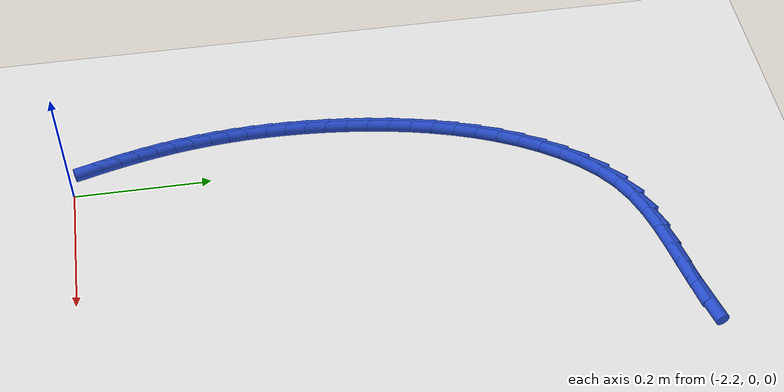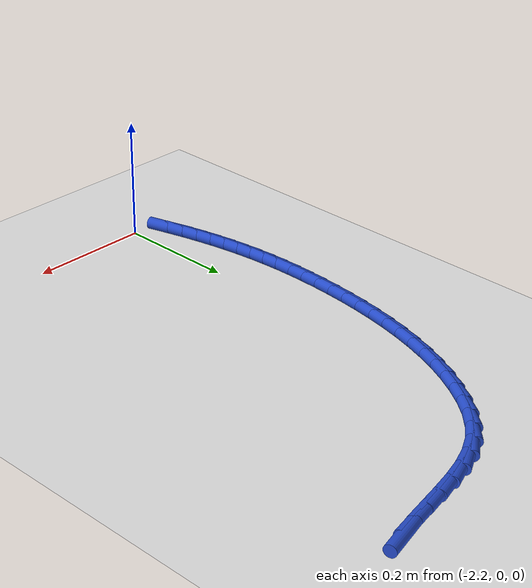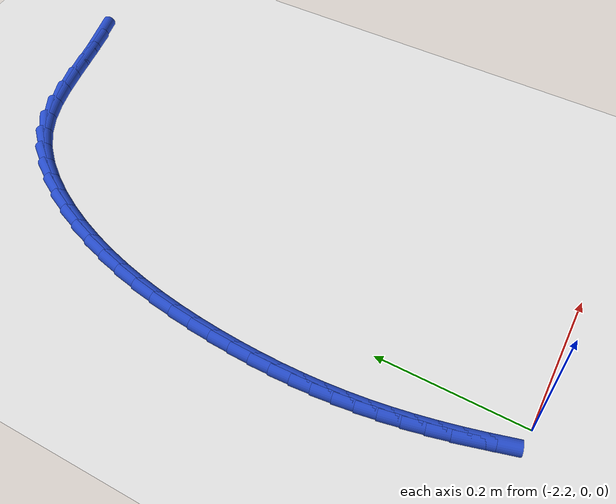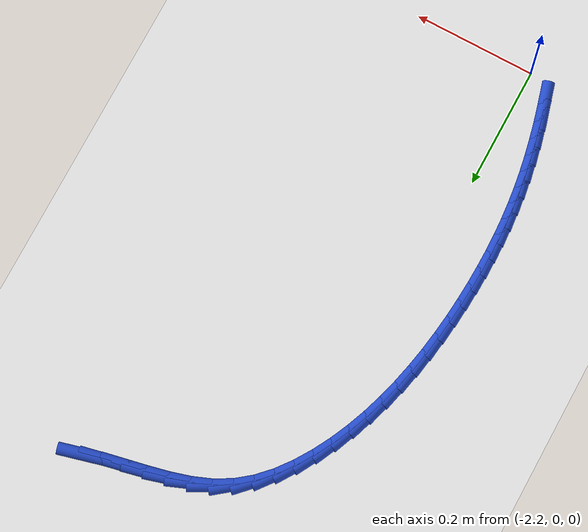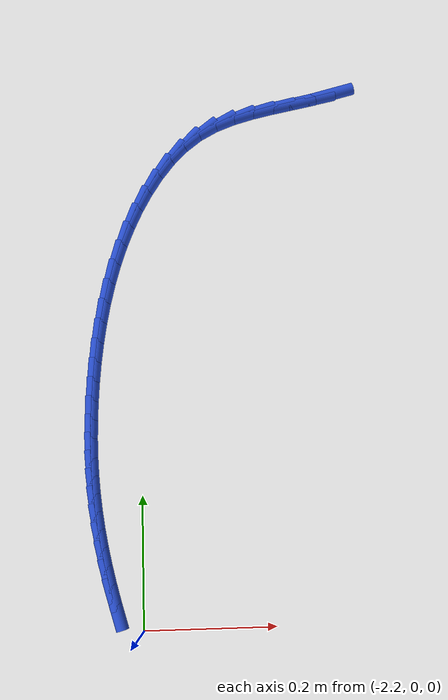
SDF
<sdf version="1.6">
 <world name="default">
  <model name="ground_plane">
   <static>1</static>
   <link name="link">
    <collision name="collision">
     <geometry><plane><normal>0 0 1</normal><size>100 100</size></plane></geometry>
     <surface><friction><ode><mu>100</mu><mu2>50</mu2></ode></friction></surface>
    </collision>
    <visual name="visual">
     <cast_shadows>0</cast_shadows>
     <geometry><plane><normal>0 0 1</normal><size>100 100</size></plane></geometry>
     <material>
      <script><uri>file://media/materials/scripts/gazebo.material</uri><name>Gazebo/WhiteGlow</name></script>
     </material>
    </visual>
   </link>
  </model>
  <model name="line">
   <link name="link_102">
    <pose>-1.8765766927615994 0.8569418117144133 0.01 0 1.57 0.2546459251918562</pose>
    <collision name="collision">
     <geometry><cylinder><radius>0.01</radius><length>0.08</length></cylinder></geometry>
    </collision>
    <visual name="visual">
     <material>
      <script><name>Gazebo/Blue</name><uri>file://media/materials/scripts/gazebo.material</uri></script>
     </material>
     <geometry><cylinder><radius>0.01</radius><length>0.08</length></cylinder></geometry>
    </visual>
   </link>
   <link name="link_103">
    <pose>-1.908298348447486 0.8486847703133565 0.01 0 1.57 0.21064116883956732</pose>
    <collision name="collision">
     <geometry><cylinder><radius>0.01</radius><length>0.08</length></cylinder></geometry>
    </collision>
    <visual name="visual">
     <material>
      <script><name>Gazebo/Blue</name><uri>file://media/materials/scripts/gazebo.material</uri></script>
     </material>
     <geometry><cylinder><radius>0.01</radius><length>0.08</length></cylinder></geometry>
    </visual>
   </link>
   <link name="link_104">
    <pose>-1.9413813663781654 0.8416111965241297 0.01 0 1.57 0.20126515017169289</pose>
    <collision name="collision">
     <geometry><cylinder><radius>0.01</radius><length>0.08</length></cylinder></geometry>
    </collision>
    <visual name="visual">
     <material>
      <script><name>Gazebo/Blue</name><uri>file://media/materials/scripts/gazebo.material</uri></script>
     </material>
     <geometry><cylinder><radius>0.01</radius><length>0.08</length></cylinder></geometry>
    </visual>
   </link>
   <link name="link_105">
    <pose>-1.975056340072896 0.8347405754581863 0.01 0 1.57 0.22447302718620588</pose>
    <collision name="collision">
     <geometry><cylinder><radius>0.01</radius><length>0.08</length></cylinder></geometry>
    </collision>
    <visual name="visual">
     <material>
      <script><name>Gazebo/Blue</name><uri>file://media/materials/scripts/gazebo.material</uri></script>
     </material>
     <geometry><cylinder><radius>0.01</radius><length>0.08</length></cylinder></geometry>
    </visual>
   </link>
   <link name="link_106">
    <pose>-2.0085538630509343 0.8270923922269792 0.01 0 1.57 0.2813097399909103</pose>
    <collision name="collision">
     <geometry><cylinder><radius>0.01</radius><length>0.08</length></cylinder></geometry>
    </collision>
    <visual name="visual">
     <material>
      <script><name>Gazebo/Blue</name><uri>file://media/materials/scripts/gazebo.material</uri></script>
     </material>
     <geometry><cylinder><radius>0.01</radius><length>0.08</length></cylinder></geometry>
    </visual>
   </link>
   <link name="link_107">
    <pose>-2.0411045288315375 0.8176861319419612 0.01 0 1.57 0.37521373354118553</pose>
    <collision name="collision">
     <geometry><cylinder><radius>0.01</radius><length>0.08</length></cylinder></geometry>
    </collision>
    <visual name="visual">
     <material>
      <script><name>Gazebo/Blue</name><uri>file://media/materials/scripts/gazebo.material</uri></script>
     </material>
     <geometry><cylinder><radius>0.01</radius><length>0.08</length></cylinder></geometry>
    </visual>
   </link>
   <link name="link_108">
    <pose>-2.071938930933964 0.8055412797145856 0.01 0 1.57 0.5099179394802034</pose>
    <collision name="collision">
     <geometry><cylinder><radius>0.01</radius><length>0.08</length></cylinder></geometry>
    </collision>
    <visual name="visual">
     <material>
      <script><name>Gazebo/Blue</name><uri>file://media/materials/scripts/gazebo.material</uri></script>
     </material>
     <geometry><cylinder><radius>0.01</radius><length>0.08</length></cylinder></geometry>
    </visual>
   </link>
   <link name="link_109">
    <pose>-2.100292012646407 0.7896847908448958 0.01 0 1.57 0.6644297479541611</pose>
    <collision name="collision">
     <geometry><cylinder><radius>0.01</radius><length>0.08</length></cylinder></geometry>
    </collision>
    <visual name="visual">
     <material>
      <script><name>Gazebo/Blue</name><uri>file://media/materials/scripts/gazebo.material</uri></script>
     </material>
     <geometry><cylinder><radius>0.01</radius><length>0.08</length></cylinder></geometry>
    </visual>
   </link>
   <link name="link_110">
    <pose>-2.1257493970835446 0.7697458697355821 0.01 0 1.57 0.7985717510512952</pose>
    <collision name="collision">
     <geometry><cylinder><radius>0.01</radius><length>0.08</length></cylinder></geometry>
    </collision>
    <visual name="visual">
     <material>
      <script><name>Gazebo/Blue</name><uri>file://media/materials/scripts/gazebo.material</uri></script>
     </material>
     <geometry><cylinder><radius>0.01</radius><length>0.08</length></cylinder></geometry>
    </visual>
   </link>
   <link name="link_111">
    <pose>-2.1484992763228767 0.7463885582385836 0.01 0 1.57 0.9083115191828699</pose>
    <collision name="collision">
     <geometry><cylinder><radius>0.01</radius><length>0.08</length></cylinder></geometry>
    </collision>
    <visual name="visual">
     <material>
      <script><name>Gazebo/Blue</name><uri>file://media/materials/scripts/gazebo.material</uri></script>
     </material>
     <geometry><cylinder><radius>0.01</radius><length>0.08</length></cylinder></geometry>
    </visual>
   </link>
   <link name="link_112">
    <pose>-2.168789245526042 0.720378915634321 0.01 0 1.57 0.9958281384704355</pose>
    <collision name="collision">
     <geometry><cylinder><radius>0.01</radius><length>0.08</length></cylinder></geometry>
    </collision>
    <visual name="visual">
     <material>
      <script><name>Gazebo/Blue</name><uri>file://media/materials/scripts/gazebo.material</uri></script>
     </material>
     <geometry><cylinder><radius>0.01</radius><length>0.08</length></cylinder></geometry>
    </visual>
   </link>
   <link name="link_113">
    <pose>-2.1868665948228663 0.6924817856117507 0.01 0 1.57 1.067603621306908</pose>
    <collision name="collision">
     <geometry><cylinder><radius>0.01</radius><length>0.08</length></cylinder></geometry>
    </collision>
    <visual name="visual">
     <material>
      <script><name>Gazebo/Blue</name><uri>file://media/materials/scripts/gazebo.material</uri></script>
     </material>
     <geometry><cylinder><radius>0.01</radius><length>0.08</length></cylinder></geometry>
    </visual>
   </link>
   <link name="link_114">
    <pose>-2.2029354249714386 0.6632898965957112 0.01 0 1.57 1.1324404594848392</pose>
    <collision name="collision">
     <geometry><cylinder><radius>0.01</radius><length>0.08</length></cylinder></geometry>
    </collision>
    <visual name="visual">
     <material>
      <script><name>Gazebo/Blue</name><uri>file://media/materials/scripts/gazebo.material</uri></script>
     </material>
     <geometry><cylinder><radius>0.01</radius><length>0.08</length></cylinder></geometry>
    </visual>
   </link>
   <link name="link_115">
    <pose>-2.217112346444207 0.6330473168426459 0.01 0 1.57 1.191551873774151</pose>
    <collision name="collision">
     <geometry><cylinder><radius>0.01</radius><length>0.08</length></cylinder></geometry>
    </collision>
    <visual name="visual">
     <material>
      <script><name>Gazebo/Blue</name><uri>file://media/materials/scripts/gazebo.material</uri></script>
     </material>
     <geometry><cylinder><radius>0.01</radius><length>0.08</length></cylinder></geometry>
    </visual>
   </link>
   <link name="link_116">
    <pose>-2.229503394774594 0.6019559721014782 0.01 0 1.57 1.2453125319016112</pose>
    <collision name="collision">
     <geometry><cylinder><radius>0.01</radius><length>0.08</length></cylinder></geometry>
    </collision>
    <visual name="visual">
     <material>
      <script><name>Gazebo/Blue</name><uri>file://media/materials/scripts/gazebo.material</uri></script>
     </material>
     <geometry><cylinder><radius>0.01</radius><length>0.08</length></cylinder></geometry>
    </visual>
   </link>
   <link name="link_117">
    <pose>-2.240214605496024 0.5702177881211316 0.01 0 1.57 1.2941567920286188</pose>
    <collision name="collision">
     <geometry><cylinder><radius>0.01</radius><length>0.08</length></cylinder></geometry>
    </collision>
    <visual name="visual">
     <material>
      <script><name>Gazebo/Blue</name><uri>file://media/materials/scripts/gazebo.material</uri></script>
     </material>
     <geometry><cylinder><radius>0.01</radius><length>0.08</length></cylinder></geometry>
    </visual>
   </link>
   <link name="link_118">
    <pose>-2.249352014141919 0.5380346906505288 0.01 0 1.57 1.3385378491574282</pose>
    <collision name="collision">
     <geometry><cylinder><radius>0.01</radius><length>0.08</length></cylinder></geometry>
    </collision>
    <visual name="visual">
     <material>
      <script><name>Gazebo/Blue</name><uri>file://media/materials/scripts/gazebo.material</uri></script>
     </material>
     <geometry><cylinder><radius>0.01</radius><length>0.08</length></cylinder></geometry>
    </visual>
   </link>
   <link name="link_119">
    <pose>-2.257021656245703 0.5056086054385935 0.01 0 1.57 1.3789010178624261</pose>
    <collision name="collision">
     <geometry><cylinder><radius>0.01</radius><length>0.08</length></cylinder></geometry>
    </collision>
    <visual name="visual">
     <material>
      <script><name>Gazebo/Blue</name><uri>file://media/materials/scripts/gazebo.material</uri></script>
     </material>
     <geometry><cylinder><radius>0.01</radius><length>0.08</length></cylinder></geometry>
    </visual>
   </link>
   <link name="link_120">
    <pose>-2.2633295673408003 0.4731414582342489 0.01 0 1.57 1.4156678809904226</pose>
    <collision name="collision">
     <geometry><cylinder><radius>0.01</radius><length>0.08</length></cylinder></geometry>
    </collision>
    <visual name="visual">
     <material>
      <script><name>Gazebo/Blue</name><uri>file://media/materials/scripts/gazebo.material</uri></script>
     </material>
     <geometry><cylinder><radius>0.01</radius><length>0.08</length></cylinder></geometry>
    </visual>
   </link>
   <link name="link_121">
    <pose>-2.2683817829606325 0.4408351747864185 0.01 0 1.57 1.4492281706874572</pose>
    <collision name="collision">
     <geometry><cylinder><radius>0.01</radius><length>0.08</length></cylinder></geometry>
    </collision>
    <visual name="visual">
     <material>
      <script><name>Gazebo/Blue</name><uri>file://media/materials/scripts/gazebo.material</uri></script>
     </material>
     <geometry><cylinder><radius>0.01</radius><length>0.08</length></cylinder></geometry>
    </visual>
   </link>
   <link name="link_122">
    <pose>-2.2722843386386242 0.40889168084402516 0.01 0 1.57 1.4799368413549783</pose>
    <collision name="collision">
     <geometry><cylinder><radius>0.01</radius><length>0.08</length></cylinder></geometry>
    </collision>
    <visual name="visual">
     <material>
      <script><name>Gazebo/Blue</name><uri>file://media/materials/scripts/gazebo.material</uri></script>
     </material>
     <geometry><cylinder><radius>0.01</radius><length>0.08</length></cylinder></geometry>
    </visual>
   </link>
   <link name="link_123">
    <pose>-2.275143269908198 0.37751290215599315 0.01 0 1.57 1.508114477269753</pose>
    <collision name="collision">
     <geometry><cylinder><radius>0.01</radius><length>0.08</length></cylinder></geometry>
    </collision>
    <visual name="visual">
     <material>
      <script><name>Gazebo/Blue</name><uri>file://media/materials/scripts/gazebo.material</uri></script>
     </material>
     <geometry><cylinder><radius>0.01</radius><length>0.08</length></cylinder></geometry>
    </visual>
   </link>
   <link name="link_124">
    <pose>-2.2770646123027776 0.3469007644712445 0.01 0 1.57 1.5346329320399656</pose>
    <collision name="collision">
     <geometry><cylinder><radius>0.01</radius><length>0.08</length></cylinder></geometry>
    </collision>
    <visual name="visual">
     <material>
      <script><name>Gazebo/Blue</name><uri>file://media/materials/scripts/gazebo.material</uri></script>
     </material>
     <geometry><cylinder><radius>0.01</radius><length>0.08</length></cylinder></geometry>
    </visual>
   </link>
   <link name="link_125">
    <pose>-2.2781388945050063 0.3172073726746862 0.01 0 1.57 1.562320178370782</pose>
    <collision name="collision">
     <geometry><cylinder><radius>0.01</radius><length>0.08</length></cylinder></geometry>
    </collision>
    <visual name="visual">
     <material>
      <script><name>Gazebo/Blue</name><uri>file://media/materials/scripts/gazebo.material</uri></script>
     </material>
     <geometry><cylinder><radius>0.01</radius><length>0.08</length></cylinder></geometry>
    </visual>
   </link>
   <link name="link_126">
    <pose>-2.2783835011579923 0.28834983234034506 0.01 0 1.57 -1.5498852626722925</pose>
    <collision name="collision">
     <geometry><cylinder><radius>0.01</radius><length>0.08</length></cylinder></geometry>
    </collision>
    <visual name="visual">
     <material>
      <script><name>Gazebo/Blue</name><uri>file://media/materials/scripts/gazebo.material</uri></script>
     </material>
     <geometry><cylinder><radius>0.01</radius><length>0.08</length></cylinder></geometry>
    </visual>
   </link>
   <link name="link_127">
    <pose>-2.2777942709936925 0.26017602570831794 0.01 0 1.57 -1.5192098032967487</pose>
    <collision name="collision">
     <geometry><cylinder><radius>0.01</radius><length>0.08</length></cylinder></geometry>
    </collision>
    <visual name="visual">
     <material>
      <script><name>Gazebo/Blue</name><uri>file://media/materials/scripts/gazebo.material</uri></script>
     </material>
     <geometry><cylinder><radius>0.01</radius><length>0.08</length></cylinder></geometry>
    </visual>
   </link>
   <link name="link_128">
    <pose>-2.276367039712247 0.23253382527800165 0.01 0 1.57 -1.4877460461558976</pose>
    <collision name="collision">
     <geometry><cylinder><radius>0.01</radius><length>0.08</length></cylinder></geometry>
    </collision>
    <visual name="visual">
     <material>
      <script><name>Gazebo/Blue</name><uri>file://media/materials/scripts/gazebo.material</uri></script>
     </material>
     <geometry><cylinder><radius>0.01</radius><length>0.08</length></cylinder></geometry>
    </visual>
   </link>
   <link name="link_129">
    <pose>-2.2740976430137962 0.2052711035487929 0.01 0 1.57 -1.4560562218937152</pose>
    <collision name="collision">
     <geometry><cylinder><radius>0.01</radius><length>0.08</length></cylinder></geometry>
    </collision>
    <visual name="visual">
     <material>
      <script><name>Gazebo/Blue</name><uri>file://media/materials/scripts/gazebo.material</uri></script>
     </material>
     <geometry><cylinder><radius>0.01</radius><length>0.08</length></cylinder></geometry>
    </visual>
   </link>
   <link name="link_130">
    <pose>-2.2709819165984806 0.17823573302008858 0.01 0 1.57 -1.4247298653025455</pose>
    <collision name="collision">
     <geometry><cylinder><radius>0.01</radius><length>0.08</length></cylinder></geometry>
    </collision>
    <visual name="visual">
     <material>
      <script><name>Gazebo/Blue</name><uri>file://media/materials/scripts/gazebo.material</uri></script>
     </material>
     <geometry><cylinder><radius>0.01</radius><length>0.08</length></cylinder></geometry>
    </visual>
   </link>
   <link name="link_131">
    <pose>-2.2670156961664434 0.15127558619128556 0.01 0 1.57 -1.3943443359685683</pose>
    <collision name="collision">
     <geometry><cylinder><radius>0.01</radius><length>0.08</length></cylinder></geometry>
    </collision>
    <visual name="visual">
     <material>
      <script><name>Gazebo/Blue</name><uri>file://media/materials/scripts/gazebo.material</uri></script>
     </material>
     <geometry><cylinder><radius>0.01</radius><length>0.08</length></cylinder></geometry>
    </visual>
   </link>
   <link name="link_132">
    <pose>-2.2621948174178232 0.12423853556178056 0.01 0 1.57 -1.3654266805640245</pose>
    <collision name="collision">
     <geometry><cylinder><radius>0.01</radius><length>0.08</length></cylinder></geometry>
    </collision>
    <visual name="visual">
     <material>
      <script><name>Gazebo/Blue</name><uri>file://media/materials/scripts/gazebo.material</uri></script>
     </material>
     <geometry><cylinder><radius>0.01</radius><length>0.08</length></cylinder></geometry>
    </visual>
   </link>
   <link name="link_133">
    <pose>-2.256515116052764 0.09697245363097057 0.01 0 1.57 -1.3384223644225435</pose>
    <collision name="collision">
     <geometry><cylinder><radius>0.01</radius><length>0.08</length></cylinder></geometry>
    </collision>
    <visual name="visual">
     <material>
      <script><name>Gazebo/Blue</name><uri>file://media/materials/scripts/gazebo.material</uri></script>
     </material>
     <geometry><cylinder><radius>0.01</radius><length>0.08</length></cylinder></geometry>
    </visual>
   </link>
   <link name="link_134">
    <pose>-2.2499724277714037 0.06932521289825266 0.01 0 1.57 -1.3136746885445993</pose>
    <collision name="collision">
     <geometry><cylinder><radius>0.01</radius><length>0.08</length></cylinder></geometry>
    </collision>
    <visual name="visual">
     <material>
      <script><name>Gazebo/Blue</name><uri>file://media/materials/scripts/gazebo.material</uri></script>
     </material>
     <geometry><cylinder><radius>0.01</radius><length>0.08</length></cylinder></geometry>
    </visual>
   </link>
   <link name="link_135">
    <pose>-2.2425625882738847 0.04114468586302296 0.01 0 1.57 -1.291416258325858</pose>
    <collision name="collision">
     <geometry><cylinder><radius>0.01</radius><length>0.08</length></cylinder></geometry>
    </collision>
    <visual name="visual">
     <material>
      <script><name>Gazebo/Blue</name><uri>file://media/materials/scripts/gazebo.material</uri></script>
     </material>
     <geometry><cylinder><radius>0.01</radius><length>0.08</length></cylinder></geometry>
    </visual>
   </link>
  </model>
 </world>
</sdf>
